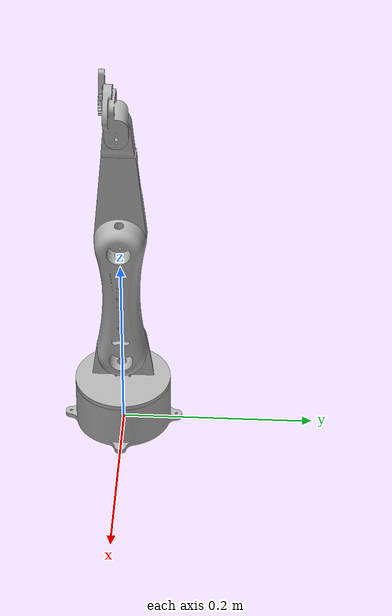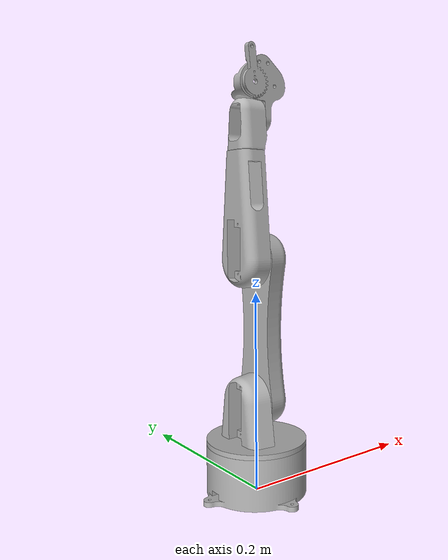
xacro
<?xml version="1.0" ?>
<robot name="five_dof_robot_arm_v3" xmlns:xacro="http://www.ros.org/wiki/xacro">

<xacro:include filename="$(find five_dof_robot_arm_v3_description)/urdf/materials.xacro" />
<xacro:include filename="$(find five_dof_robot_arm_v3_description)/urdf/five_dof_robot_arm_v3.trans" />
<xacro:include filename="$(find five_dof_robot_arm_v3_description)/urdf/five_dof_robot_arm_v3.gazebo" />
<link name="base_link">
  <inertial>
    <origin xyz="0.0008893073972662585 -1.2337343167987407e-16 0.022425917284170597" rpy="0 0 0"/>
    <mass value="0.7233661769499682"/>
    <inertia ixx="0.000878" iyy="0.000958" izz="0.001522" ixy="0.0" iyz="-0.0" ixz="-1e-05"/>
  </inertial>
  <visual>
    <origin xyz="0 0 0" rpy="0 0 0"/>
    <geometry>
      <mesh filename="file://$(find five_dof_robot_arm_v3_description)/meshes/base_link.stl" scale="0.001 0.001 0.001"/>
    </geometry>
    <material name="silver"/>
  </visual>
  <collision>
    <origin xyz="0 0 0" rpy="0 0 0"/>
    <geometry>
      <mesh filename="file://$(find five_dof_robot_arm_v3_description)/meshes/base_link.stl" scale="0.001 0.001 0.001"/>
    </geometry>
  </collision>
</link>

<link name="link1_1">
  <inertial>
    <origin xyz="-0.0070577395079751415 1.3071147524357229e-08 0.01942304389081126" rpy="0 0 0"/>
    <mass value="0.7043175850391776"/>
    <inertia ixx="0.000607" iyy="0.000525" izz="0.000555" ixy="0.0" iyz="-0.0" ixz="6.3e-05"/>
  </inertial>
  <visual>
    <origin xyz="-0.0 0.0 -0.05" rpy="0 0 0"/>
    <geometry>
      <mesh filename="file://$(find five_dof_robot_arm_v3_description)/meshes/link1_1.stl" scale="0.001 0.001 0.001"/>
    </geometry>
    <material name="silver"/>
  </visual>
  <collision>
    <origin xyz="-0.0 0.0 -0.05" rpy="0 0 0"/>
    <geometry>
      <mesh filename="file://$(find five_dof_robot_arm_v3_description)/meshes/link1_1.stl" scale="0.001 0.001 0.001"/>
    </geometry>
  </collision>
</link>

<link name="link2_1">
  <inertial>
    <origin xyz="0.01150846971338261 -0.049999635832432825 0.0699963552070749" rpy="0 0 0"/>
    <mass value="1.0831665493448879"/>
    <inertia ixx="0.003389" iyy="0.003241" izz="0.000242" ixy="-0.0" iyz="-0.0" ixz="0.0"/>
  </inertial>
  <visual>
    <origin xyz="0.0025 -0.05 -0.09355" rpy="0 0 0"/>
    <geometry>
      <mesh filename="file://$(find five_dof_robot_arm_v3_description)/meshes/link2_1.stl" scale="0.001 0.001 0.001"/>
    </geometry>
    <material name="silver"/>
  </visual>
  <collision>
    <origin xyz="0.0025 -0.05 -0.09355" rpy="0 0 0"/>
    <geometry>
      <mesh filename="file://$(find five_dof_robot_arm_v3_description)/meshes/link2_1.stl" scale="0.001 0.001 0.001"/>
    </geometry>
  </collision>
</link>

<link name="link3_1">
  <inertial>
    <origin xyz="-0.011778940234588555 -0.16495054262364633 0.03169894141863086" rpy="0 0 0"/>
    <mass value="0.6306328275703736"/>
    <inertia ixx="0.00092" iyy="0.00082" izz="0.000167" ixy="-0.0" iyz="2e-06" ixz="6e-06"/>
  </inertial>
  <visual>
    <origin xyz="0.0013 -0.16485 -0.23355" rpy="0 0 0"/>
    <geometry>
      <mesh filename="file://$(find five_dof_robot_arm_v3_description)/meshes/link3_1.stl" scale="0.001 0.001 0.001"/>
    </geometry>
    <material name="silver"/>
  </visual>
  <collision>
    <origin xyz="0.0013 -0.16485 -0.23355" rpy="0 0 0"/>
    <geometry>
      <mesh filename="file://$(find five_dof_robot_arm_v3_description)/meshes/link3_1.stl" scale="0.001 0.001 0.001"/>
    </geometry>
  </collision>
</link>

<link name="link4_1">
  <inertial>
    <origin xyz="-0.002032348609627618 -0.2484107135080845 0.6935629813639912" rpy="0 0 0"/>
    <mass value="0.16040664904265328"/>
    <inertia ixx="4.8e-05" iyy="4e-05" izz="2.3e-05" ixy="0.0" iyz="0.0" ixz="-3e-06"/>
  </inertial>
  <visual>
    <origin xyz="0.0076 -0.2479 0.33655" rpy="0 0 0"/>
    <geometry>
      <mesh filename="file://$(find five_dof_robot_arm_v3_description)/meshes/link4_1.stl" scale="0.001 0.001 0.001"/>
    </geometry>
    <material name="silver"/>
  </visual>
  <collision>
    <origin xyz="0.0076 -0.2479 0.33655" rpy="0 0 0"/>
    <geometry>
      <mesh filename="file://$(find five_dof_robot_arm_v3_description)/meshes/link4_1.stl" scale="0.001 0.001 0.001"/>
    </geometry>
  </collision>
</link>

<link name="link5_1">
  <inertial>
    <origin xyz="0.013704431681832333 -0.7108332119195967 0.3919980421720818" rpy="0 0 0"/>
    <mass value="0.12227452738409848"/>
    <inertia ixx="3.8e-05" iyy="4.9e-05" izz="2e-05" ixy="-0.0" iyz="7e-06" ixz="4e-06"/>
  </inertial>
  <visual>
    <origin xyz="0.013205 -0.7055 0.000563" rpy="0 0 0"/>
    <geometry>
      <mesh filename="file://$(find five_dof_robot_arm_v3_description)/meshes/link5_1.stl" scale="0.001 0.001 0.001"/>
    </geometry>
    <material name="silver"/>
  </visual>
  <collision>
    <origin xyz="0.013205 -0.7055 0.000563" rpy="0 0 0"/>
    <geometry>
      <mesh filename="file://$(find five_dof_robot_arm_v3_description)/meshes/link5_1.stl" scale="0.001 0.001 0.001"/>
    </geometry>
  </collision>
</link>

<link name="link6_1">
  <inertial>
    <origin xyz="-0.4134194353383916 -0.3695231840220428 0.41655331381040234" rpy="0 0 0"/>
    <mass value="0.022172246270020905"/>
    <inertia ixx="4e-06" iyy="4e-06" izz="1e-06" ixy="0.0" iyz="-0.0" ixz="0.0"/>
  </inertial>
  <visual>
    <origin xyz="-0.399254 -0.353104 0.012135" rpy="0 0 0"/>
    <geometry>
      <mesh filename="file://$(find five_dof_robot_arm_v3_description)/meshes/link6_1.stl" scale="0.001 0.001 0.001"/>
    </geometry>
    <material name="silver"/>
  </visual>
  <collision>
    <origin xyz="-0.399254 -0.353104 0.012135" rpy="0 0 0"/>
    <geometry>
      <mesh filename="file://$(find five_dof_robot_arm_v3_description)/meshes/link6_1.stl" scale="0.001 0.001 0.001"/>
    </geometry>
  </collision>
</link>

<joint name="joint1" type="revolute">
  <origin xyz="0.0 0.0 0.05" rpy="0 0 0"/>
  <parent link="base_link"/>
  <child link="link1_1"/>
  <axis xyz="0.0 -0.0 1.0"/>
  <limit upper="3.141593" lower="0.0" effort="100" velocity="100"/>
</joint>

<joint name="joint2" type="revolute">
  <origin xyz="-0.0025 0.05 0.04355" rpy="0 0 0"/>
  <parent link="link1_1"/>
  <child link="link2_1"/>
  <axis xyz="-1.0 0.0 -0.0"/>
  <limit upper="1.570796" lower="-1.570796" effort="100" velocity="100"/>
</joint>

<joint name="joint3" type="revolute">
  <origin xyz="0.0012 0.11485 0.14" rpy="0 0 0"/>
  <parent link="link2_1"/>
  <child link="link3_1"/>
  <axis xyz="-1.0 0.0 -0.0"/>
  <limit upper="1.570796" lower="-1.570796" effort="100" velocity="100"/>
</joint>

<joint name="joint4" type="revolute">
  <origin xyz="-0.0063 0.08305 -0.5701" rpy="0 0 0"/>
  <parent link="link3_1"/>
  <child link="link4_1"/>
  <axis xyz="-0.0 -0.0 1.0"/>
  <limit upper="3.141593" lower="0.0" effort="100" velocity="100"/>
</joint>

<joint name="joint5" type="revolute">
  <origin xyz="-0.005605 0.4576 0.335987" rpy="0 0 0"/>
  <parent link="link4_1"/>
  <child link="link5_1"/>
  <axis xyz="-1.0 -0.0 0.0"/>
  <limit upper="1.570796" lower="-1.570796" effort="100" velocity="100"/>
</joint>

<joint name="joint6" type="revolute">
  <origin xyz="0.412459 -0.352396 -0.011572" rpy="0 0 0"/>
  <parent link="link5_1"/>
  <child link="link6_1"/>
  <axis xyz="0.0 -1.0 0.0"/>
  <limit upper="1.047198" lower="0.0" effort="100" velocity="100"/>
</joint>

</robot>

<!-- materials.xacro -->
<robot name="five_dof_robot_arm_v3" xmlns:xacro="http://www.ros.org/wiki/xacro" >

<material name="silver">
  <color rgba="0.700 0.700 0.700 1.000"/>
</material>

</robot>

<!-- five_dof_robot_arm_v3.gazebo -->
<robot name="five_dof_robot_arm_v3" xmlns:xacro="http://www.ros.org/wiki/xacro" >

<xacro:property name="body_color" value="Gazebo/Silver" />

<gazebo>
  <plugin name="control" filename="libgazebo_ros_control.so"/>
</gazebo>
<gazebo reference="base_link">
  <material>${body_color}</material>
  <mu1>0.2</mu1>
  <mu2>0.2</mu2>
  <self_collide>true</self_collide>
  <gravity>true</gravity>
</gazebo>

<gazebo reference="link1_1">
  <material>${body_color}</material>
  <mu1>0.2</mu1>
  <mu2>0.2</mu2>
  <self_collide>true</self_collide>
</gazebo>

<gazebo reference="link2_1">
  <material>${body_color}</material>
  <mu1>0.2</mu1>
  <mu2>0.2</mu2>
  <self_collide>true</self_collide>
</gazebo>

<gazebo reference="link3_1">
  <material>${body_color}</material>
  <mu1>0.2</mu1>
  <mu2>0.2</mu2>
  <self_collide>true</self_collide>
</gazebo>

<gazebo reference="link4_1">
  <material>${body_color}</material>
  <mu1>0.2</mu1>
  <mu2>0.2</mu2>
  <self_collide>true</self_collide>
</gazebo>

<gazebo reference="link5_1">
  <material>${body_color}</material>
  <mu1>0.2</mu1>
  <mu2>0.2</mu2>
  <self_collide>true</self_collide>
</gazebo>

<gazebo reference="link6_1">
  <material>${body_color}</material>
  <mu1>0.2</mu1>
  <mu2>0.2</mu2>
  <self_collide>true</self_collide>
</gazebo>

</robot>
